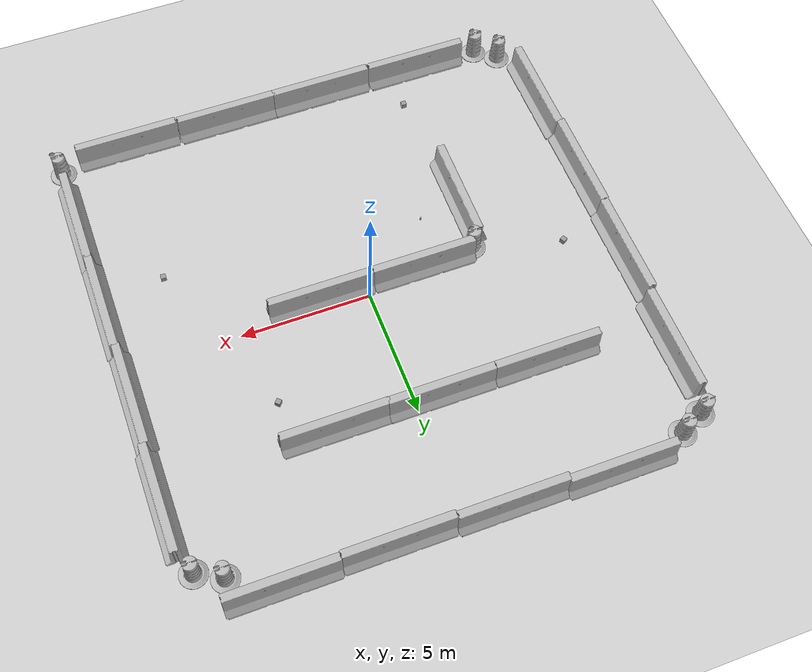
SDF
<sdf version="1.7">
 <world name="default">
  <light name="sun" type="directional">
   <pose>0 0 10 0 -0 0</pose>
   <diffuse>0.8 0.8 0.8 1</diffuse>
   <specular>0.2 0.2 0.2 1</specular>
   <attenuation>
    <range>1000</range>
    <constant>0.9</constant>
    <linear>0.01</linear>
    <quadratic>0.001</quadratic>
   </attenuation>
   <direction>-0.5 0.1 -0.9</direction>
   <spot><inner_angle>0</inner_angle><outer_angle>0</outer_angle><falloff>0</falloff></spot>
  </light>
  <model name="ground_plane">
   <static>1</static>
   <link name="link">
    <collision name="collision">
     <geometry><plane><normal>0 0 1</normal><size>100 100</size></plane></geometry>
     <surface><friction><ode><mu>100</mu><mu2>50</mu2></ode></friction></surface>
    </collision>
    <visual name="visual">
     <cast_shadows>0</cast_shadows>
     <geometry><plane><normal>0 0 1</normal><size>100 100</size></plane></geometry>
     <material>
      <script><uri>file://media/materials/scripts/gazebo.material</uri><name>Gazebo/Grey</name></script>
     </material>
    </visual>
   </link>
  </model>
  <gravity>0 0 -9.8</gravity>
  <magnetic_field>6e-06 2.3e-05 -4.2e-05</magnetic_field>
  <atmosphere type="adiabatic"/>
  <physics name="default_physics" default="0" type="ode">
   <max_step_size>0.001</max_step_size>
   <real_time_factor>1</real_time_factor>
   <real_time_update_rate>1000</real_time_update_rate>
  </physics>
  <scene><ambient>0.4 0.4 0.4 1</ambient><background>0.7 0.7 0.7 1</background><shadows>1</shadows></scene>
  <spherical_coordinates>
   <surface_model>EARTH_WGS84</surface_model>
   <latitude_deg>0</latitude_deg>
   <longitude_deg>0</longitude_deg>
   <elevation>0</elevation>
   <heading_deg>0</heading_deg>
  </spherical_coordinates>
  <model name="jersey_barrier">
   <static>1</static>
   <link name="link">
    <visual name="visual">
     <geometry><mesh><uri>model://jersey_barrier/meshes/jersey_barrier.dae</uri></mesh></geometry>
    </visual>
    <collision name="upright">
     <pose>0 0 0.5715 0 -0 0</pose>
     <geometry><box><size>4.06542 0.3063 1.143</size></box></geometry>
    </collision>
    <collision name="base">
     <pose>0 0 0.032258 0 -0 0</pose>
     <geometry><box><size>4.06542 0.8107 0.064516</size></box></geometry>
    </collision>
    <collision name="base2">
     <pose>0 0 0.1 0 -0 0</pose>
     <geometry><box><size>4.06542 0.65 0.1</size></box></geometry>
    </collision>
    <collision name="base3">
     <pose>0 0 0.2 0 -0 0</pose>
     <geometry><box><size>4.06542 0.5 0.1</size></box></geometry>
    </collision>
    <collision name="left-angle">
     <pose>0 -0.224 0.2401 0.9 -0 0</pose>
     <geometry><box><size>4.06542 0.5 0.064516</size></box></geometry>
    </collision>
    <collision name="right-angle">
     <pose>0 0.224 0.2401 -0.9 0 0</pose>
     <geometry><box><size>4.06542 0.5 0.064516</size></box></geometry>
    </collision>
   </link>
   <pose>-5.65677 9.4608 0 0 -0 0</pose>
  </model>
  <model name="jersey_barrier_clone">
   <static>1</static>
   <link name="link">
    <visual name="visual">
     <geometry><mesh><uri>model://jersey_barrier/meshes/jersey_barrier.dae</uri></mesh></geometry>
    </visual>
    <collision name="upright">
     <pose>0 0 0.5715 0 -0 0</pose>
     <geometry><box><size>4.06542 0.3063 1.143</size></box></geometry>
    </collision>
    <collision name="base">
     <pose>0 0 0.032258 0 -0 0</pose>
     <geometry><box><size>4.06542 0.8107 0.064516</size></box></geometry>
    </collision>
    <collision name="base2">
     <pose>0 0 0.1 0 -0 0</pose>
     <geometry><box><size>4.06542 0.65 0.1</size></box></geometry>
    </collision>
    <collision name="base3">
     <pose>0 0 0.2 0 -0 0</pose>
     <geometry><box><size>4.06542 0.5 0.1</size></box></geometry>
    </collision>
    <collision name="left-angle">
     <pose>0 -0.224 0.2401 0.9 -0 0</pose>
     <geometry><box><size>4.06542 0.5 0.064516</size></box></geometry>
    </collision>
    <collision name="right-angle">
     <pose>0 0.224 0.2401 -0.9 0 0</pose>
     <geometry><box><size>4.06542 0.5 0.064516</size></box></geometry>
    </collision>
   </link>
   <pose>-1.65987 9.36075 0 0 -0 0</pose>
  </model>
  <model name="jersey_barrier_clone_0">
   <static>1</static>
   <link name="link">
    <visual name="visual">
     <geometry><mesh><uri>model://jersey_barrier/meshes/jersey_barrier.dae</uri></mesh></geometry>
    </visual>
    <collision name="upright">
     <pose>0 0 0.5715 0 -0 0</pose>
     <geometry><box><size>4.06542 0.3063 1.143</size></box></geometry>
    </collision>
    <collision name="base">
     <pose>0 0 0.032258 0 -0 0</pose>
     <geometry><box><size>4.06542 0.8107 0.064516</size></box></geometry>
    </collision>
    <collision name="base2">
     <pose>0 0 0.1 0 -0 0</pose>
     <geometry><box><size>4.06542 0.65 0.1</size></box></geometry>
    </collision>
    <collision name="base3">
     <pose>0 0 0.2 0 -0 0</pose>
     <geometry><box><size>4.06542 0.5 0.1</size></box></geometry>
    </collision>
    <collision name="left-angle">
     <pose>0 -0.224 0.2401 0.9 -0 0</pose>
     <geometry><box><size>4.06542 0.5 0.064516</size></box></geometry>
    </collision>
    <collision name="right-angle">
     <pose>0 0.224 0.2401 -0.9 0 0</pose>
     <geometry><box><size>4.06542 0.5 0.064516</size></box></geometry>
    </collision>
   </link>
   <pose>2.39773 9.29085 0 0 -0 0</pose>
  </model>
  <model name="jersey_barrier_clone_1">
   <static>1</static>
   <link name="link">
    <visual name="visual">
     <geometry><mesh><uri>model://jersey_barrier/meshes/jersey_barrier.dae</uri></mesh></geometry>
    </visual>
    <collision name="upright">
     <pose>0 0 0.5715 0 -0 0</pose>
     <geometry><box><size>4.06542 0.3063 1.143</size></box></geometry>
    </collision>
    <collision name="base">
     <pose>0 0 0.032258 0 -0 0</pose>
     <geometry><box><size>4.06542 0.8107 0.064516</size></box></geometry>
    </collision>
    <collision name="base2">
     <pose>0 0 0.1 0 -0 0</pose>
     <geometry><box><size>4.06542 0.65 0.1</size></box></geometry>
    </collision>
    <collision name="base3">
     <pose>0 0 0.2 0 -0 0</pose>
     <geometry><box><size>4.06542 0.5 0.1</size></box></geometry>
    </collision>
    <collision name="left-angle">
     <pose>0 -0.224 0.2401 0.9 -0 0</pose>
     <geometry><box><size>4.06542 0.5 0.064516</size></box></geometry>
    </collision>
    <collision name="right-angle">
     <pose>0 0.224 0.2401 -0.9 0 0</pose>
     <geometry><box><size>4.06542 0.5 0.064516</size></box></geometry>
    </collision>
   </link>
   <pose>6.45464 9.33993 0 0 -0 0</pose>
  </model>
  <model name="jersey_barrier_clone_3">
   <static>1</static>
   <link name="link">
    <visual name="visual">
     <geometry><mesh><uri>model://jersey_barrier/meshes/jersey_barrier.dae</uri></mesh></geometry>
    </visual>
    <collision name="upright">
     <pose>0 0 0.5715 0 -0 0</pose>
     <geometry><box><size>4.06542 0.3063 1.143</size></box></geometry>
    </collision>
    <collision name="base">
     <pose>0 0 0.032258 0 -0 0</pose>
     <geometry><box><size>4.06542 0.8107 0.064516</size></box></geometry>
    </collision>
    <collision name="base2">
     <pose>0 0 0.1 0 -0 0</pose>
     <geometry><box><size>4.06542 0.65 0.1</size></box></geometry>
    </collision>
    <collision name="base3">
     <pose>0 0 0.2 0 -0 0</pose>
     <geometry><box><size>4.06542 0.5 0.1</size></box></geometry>
    </collision>
    <collision name="left-angle">
     <pose>0 -0.224 0.2401 0.9 -0 0</pose>
     <geometry><box><size>4.06542 0.5 0.064516</size></box></geometry>
    </collision>
    <collision name="right-angle">
     <pose>0 0.224 0.2401 -0.9 0 0</pose>
     <geometry><box><size>4.06542 0.5 0.064516</size></box></geometry>
    </collision>
   </link>
   <pose>9.44656 5.35522 0 0 0 -1.56865</pose>
  </model>
  <model name="jersey_barrier_clone_3_clone">
   <static>1</static>
   <link name="link">
    <visual name="visual">
     <geometry><mesh><uri>model://jersey_barrier/meshes/jersey_barrier.dae</uri></mesh></geometry>
    </visual>
    <collision name="upright">
     <pose>0 0 0.5715 0 -0 0</pose>
     <geometry><box><size>4.06542 0.3063 1.143</size></box></geometry>
    </collision>
    <collision name="base">
     <pose>0 0 0.032258 0 -0 0</pose>
     <geometry><box><size>4.06542 0.8107 0.064516</size></box></geometry>
    </collision>
    <collision name="base2">
     <pose>0 0 0.1 0 -0 0</pose>
     <geometry><box><size>4.06542 0.65 0.1</size></box></geometry>
    </collision>
    <collision name="base3">
     <pose>0 0 0.2 0 -0 0</pose>
     <geometry><box><size>4.06542 0.5 0.1</size></box></geometry>
    </collision>
    <collision name="left-angle">
     <pose>0 -0.224 0.2401 0.9 -0 0</pose>
     <geometry><box><size>4.06542 0.5 0.064516</size></box></geometry>
    </collision>
    <collision name="right-angle">
     <pose>0 0.224 0.2401 -0.9 0 0</pose>
     <geometry><box><size>4.06542 0.5 0.064516</size></box></geometry>
    </collision>
   </link>
   <pose>9.3727 1.33119 0 0 0 -1.56865</pose>
  </model>
  <model name="jersey_barrier_clone_3_clone_0">
   <static>1</static>
   <link name="link">
    <visual name="visual">
     <geometry><mesh><uri>model://jersey_barrier/meshes/jersey_barrier.dae</uri></mesh></geometry>
    </visual>
    <collision name="upright">
     <pose>0 0 0.5715 0 -0 0</pose>
     <geometry><box><size>4.06542 0.3063 1.143</size></box></geometry>
    </collision>
    <collision name="base">
     <pose>0 0 0.032258 0 -0 0</pose>
     <geometry><box><size>4.06542 0.8107 0.064516</size></box></geometry>
    </collision>
    <collision name="base2">
     <pose>0 0 0.1 0 -0 0</pose>
     <geometry><box><size>4.06542 0.65 0.1</size></box></geometry>
    </collision>
    <collision name="base3">
     <pose>0 0 0.2 0 -0 0</pose>
     <geometry><box><size>4.06542 0.5 0.1</size></box></geometry>
    </collision>
    <collision name="left-angle">
     <pose>0 -0.224 0.2401 0.9 -0 0</pose>
     <geometry><box><size>4.06542 0.5 0.064516</size></box></geometry>
    </collision>
    <collision name="right-angle">
     <pose>0 0.224 0.2401 -0.9 0 0</pose>
     <geometry><box><size>4.06542 0.5 0.064516</size></box></geometry>
    </collision>
   </link>
   <pose>9.4315 -2.6268 0 0 0 -1.56865</pose>
  </model>
  <model name="jersey_barrier_clone_3_clone_1">
   <static>1</static>
   <link name="link">
    <visual name="visual">
     <geometry><mesh><uri>model://jersey_barrier/meshes/jersey_barrier.dae</uri></mesh></geometry>
    </visual>
    <collision name="upright">
     <pose>0 0 0.5715 0 -0 0</pose>
     <geometry><box><size>4.06542 0.3063 1.143</size></box></geometry>
    </collision>
    <collision name="base">
     <pose>0 0 0.032258 0 -0 0</pose>
     <geometry><box><size>4.06542 0.8107 0.064516</size></box></geometry>
    </collision>
    <collision name="base2">
     <pose>0 0 0.1 0 -0 0</pose>
     <geometry><box><size>4.06542 0.65 0.1</size></box></geometry>
    </collision>
    <collision name="base3">
     <pose>0 0 0.2 0 -0 0</pose>
     <geometry><box><size>4.06542 0.5 0.1</size></box></geometry>
    </collision>
    <collision name="left-angle">
     <pose>0 -0.224 0.2401 0.9 -0 0</pose>
     <geometry><box><size>4.06542 0.5 0.064516</size></box></geometry>
    </collision>
    <collision name="right-angle">
     <pose>0 0.224 0.2401 -0.9 0 0</pose>
     <geometry><box><size>4.06542 0.5 0.064516</size></box></geometry>
    </collision>
   </link>
   <pose>9.44969 -6.53485 0 0 0 -1.56865</pose>
  </model>
  <model name="jersey_barrier_clone_2_clone">
   <static>1</static>
   <link name="link">
    <visual name="visual">
     <geometry><mesh><uri>model://jersey_barrier/meshes/jersey_barrier.dae</uri></mesh></geometry>
    </visual>
    <collision name="upright">
     <pose>0 0 0.5715 0 -0 0</pose>
     <geometry><box><size>4.06542 0.3063 1.143</size></box></geometry>
    </collision>
    <collision name="base">
     <pose>0 0 0.032258 0 -0 0</pose>
     <geometry><box><size>4.06542 0.8107 0.064516</size></box></geometry>
    </collision>
    <collision name="base2">
     <pose>0 0 0.1 0 -0 0</pose>
     <geometry><box><size>4.06542 0.65 0.1</size></box></geometry>
    </collision>
    <collision name="base3">
     <pose>0 0 0.2 0 -0 0</pose>
     <geometry><box><size>4.06542 0.5 0.1</size></box></geometry>
    </collision>
    <collision name="left-angle">
     <pose>0 -0.224 0.2401 0.9 -0 0</pose>
     <geometry><box><size>4.06542 0.5 0.064516</size></box></geometry>
    </collision>
    <collision name="right-angle">
     <pose>0 0.224 0.2401 -0.9 0 0</pose>
     <geometry><box><size>4.06542 0.5 0.064516</size></box></geometry>
    </collision>
   </link>
   <pose>6.70657 -9.54347 0 0 -0 0</pose>
  </model>
  <model name="jersey_barrier_clone_2_clone_0">
   <static>1</static>
   <link name="link">
    <visual name="visual">
     <geometry><mesh><uri>model://jersey_barrier/meshes/jersey_barrier.dae</uri></mesh></geometry>
    </visual>
    <collision name="upright">
     <pose>0 0 0.5715 0 -0 0</pose>
     <geometry><box><size>4.06542 0.3063 1.143</size></box></geometry>
    </collision>
    <collision name="base">
     <pose>0 0 0.032258 0 -0 0</pose>
     <geometry><box><size>4.06542 0.8107 0.064516</size></box></geometry>
    </collision>
    <collision name="base2">
     <pose>0 0 0.1 0 -0 0</pose>
     <geometry><box><size>4.06542 0.65 0.1</size></box></geometry>
    </collision>
    <collision name="base3">
     <pose>0 0 0.2 0 -0 0</pose>
     <geometry><box><size>4.06542 0.5 0.1</size></box></geometry>
    </collision>
    <collision name="left-angle">
     <pose>0 -0.224 0.2401 0.9 -0 0</pose>
     <geometry><box><size>4.06542 0.5 0.064516</size></box></geometry>
    </collision>
    <collision name="right-angle">
     <pose>0 0.224 0.2401 -0.9 0 0</pose>
     <geometry><box><size>4.06542 0.5 0.064516</size></box></geometry>
    </collision>
   </link>
   <pose>2.59616 -9.50928 0 0 -0 0</pose>
  </model>
  <model name="jersey_barrier_clone_2_clone_1">
   <static>1</static>
   <link name="link">
    <visual name="visual">
     <geometry><mesh><uri>model://jersey_barrier/meshes/jersey_barrier.dae</uri></mesh></geometry>
    </visual>
    <collision name="upright">
     <pose>0 0 0.5715 0 -0 0</pose>
     <geometry><box><size>4.06542 0.3063 1.143</size></box></geometry>
    </collision>
    <collision name="base">
     <pose>0 0 0.032258 0 -0 0</pose>
     <geometry><box><size>4.06542 0.8107 0.064516</size></box></geometry>
    </collision>
    <collision name="base2">
     <pose>0 0 0.1 0 -0 0</pose>
     <geometry><box><size>4.06542 0.65 0.1</size></box></geometry>
    </collision>
    <collision name="base3">
     <pose>0 0 0.2 0 -0 0</pose>
     <geometry><box><size>4.06542 0.5 0.1</size></box></geometry>
    </collision>
    <collision name="left-angle">
     <pose>0 -0.224 0.2401 0.9 -0 0</pose>
     <geometry><box><size>4.06542 0.5 0.064516</size></box></geometry>
    </collision>
    <collision name="right-angle">
     <pose>0 0.224 0.2401 -0.9 0 0</pose>
     <geometry><box><size>4.06542 0.5 0.064516</size></box></geometry>
    </collision>
   </link>
   <pose>-1.33414 -9.50852 0 0 -0 0</pose>
  </model>
  <model name="jersey_barrier_clone_2_clone_2">
   <static>1</static>
   <link name="link">
    <visual name="visual">
     <geometry><mesh><uri>model://jersey_barrier/meshes/jersey_barrier.dae</uri></mesh></geometry>
    </visual>
    <collision name="upright">
     <pose>0 0 0.5715 0 -0 0</pose>
     <geometry><box><size>4.06542 0.3063 1.143</size></box></geometry>
    </collision>
    <collision name="base">
     <pose>0 0 0.032258 0 -0 0</pose>
     <geometry><box><size>4.06542 0.8107 0.064516</size></box></geometry>
    </collision>
    <collision name="base2">
     <pose>0 0 0.1 0 -0 0</pose>
     <geometry><box><size>4.06542 0.65 0.1</size></box></geometry>
    </collision>
    <collision name="base3">
     <pose>0 0 0.2 0 -0 0</pose>
     <geometry><box><size>4.06542 0.5 0.1</size></box></geometry>
    </collision>
    <collision name="left-angle">
     <pose>0 -0.224 0.2401 0.9 -0 0</pose>
     <geometry><box><size>4.06542 0.5 0.064516</size></box></geometry>
    </collision>
    <collision name="right-angle">
     <pose>0 0.224 0.2401 -0.9 0 0</pose>
     <geometry><box><size>4.06542 0.5 0.064516</size></box></geometry>
    </collision>
   </link>
   <pose>-5.44605 -9.49634 0 0 -0 0</pose>
  </model>
  <model name="jersey_barrier_clone_3_clone_1_clone">
   <static>1</static>
   <link name="link">
    <visual name="visual">
     <geometry><mesh><uri>model://jersey_barrier/meshes/jersey_barrier.dae</uri></mesh></geometry>
    </visual>
    <collision name="upright">
     <pose>0 0 0.5715 0 -0 0</pose>
     <geometry><box><size>4.06542 0.3063 1.143</size></box></geometry>
    </collision>
    <collision name="base">
     <pose>0 0 0.032258 0 -0 0</pose>
     <geometry><box><size>4.06542 0.8107 0.064516</size></box></geometry>
    </collision>
    <collision name="base2">
     <pose>0 0 0.1 0 -0 0</pose>
     <geometry><box><size>4.06542 0.65 0.1</size></box></geometry>
    </collision>
    <collision name="base3">
     <pose>0 0 0.2 0 -0 0</pose>
     <geometry><box><size>4.06542 0.5 0.1</size></box></geometry>
    </collision>
    <collision name="left-angle">
     <pose>0 -0.224 0.2401 0.9 -0 0</pose>
     <geometry><box><size>4.06542 0.5 0.064516</size></box></geometry>
    </collision>
    <collision name="right-angle">
     <pose>0 0.224 0.2401 -0.9 0 0</pose>
     <geometry><box><size>4.06542 0.5 0.064516</size></box></geometry>
    </collision>
   </link>
   <pose>-9.54289 -6.33149 0 0 0 -1.56865</pose>
  </model>
  <model name="jersey_barrier_clone_3_clone_1_clone_0">
   <static>1</static>
   <link name="link">
    <visual name="visual">
     <geometry><mesh><uri>model://jersey_barrier/meshes/jersey_barrier.dae</uri></mesh></geometry>
    </visual>
    <collision name="upright">
     <pose>0 0 0.5715 0 -0 0</pose>
     <geometry><box><size>4.06542 0.3063 1.143</size></box></geometry>
    </collision>
    <collision name="base">
     <pose>0 0 0.032258 0 -0 0</pose>
     <geometry><box><size>4.06542 0.8107 0.064516</size></box></geometry>
    </collision>
    <collision name="base2">
     <pose>0 0 0.1 0 -0 0</pose>
     <geometry><box><size>4.06542 0.65 0.1</size></box></geometry>
    </collision>
    <collision name="base3">
     <pose>0 0 0.2 0 -0 0</pose>
     <geometry><box><size>4.06542 0.5 0.1</size></box></geometry>
    </collision>
    <collision name="left-angle">
     <pose>0 -0.224 0.2401 0.9 -0 0</pose>
     <geometry><box><size>4.06542 0.5 0.064516</size></box></geometry>
    </collision>
    <collision name="right-angle">
     <pose>0 0.224 0.2401 -0.9 0 0</pose>
     <geometry><box><size>4.06542 0.5 0.064516</size></box></geometry>
    </collision>
   </link>
   <pose>-9.6221 -2.35336 0 0 0 -1.56865</pose>
  </model>
  <model name="jersey_barrier_clone_3_clone_1_clone_1">
   <static>1</static>
   <link name="link">
    <visual name="visual">
     <geometry><mesh><uri>model://jersey_barrier/meshes/jersey_barrier.dae</uri></mesh></geometry>
    </visual>
    <collision name="upright">
     <pose>0 0 0.5715 0 -0 0</pose>
     <geometry><box><size>4.06542 0.3063 1.143</size></box></geometry>
    </collision>
    <collision name="base">
     <pose>0 0 0.032258 0 -0 0</pose>
     <geometry><box><size>4.06542 0.8107 0.064516</size></box></geometry>
    </collision>
    <collision name="base2">
     <pose>0 0 0.1 0 -0 0</pose>
     <geometry><box><size>4.06542 0.65 0.1</size></box></geometry>
    </collision>
    <collision name="base3">
     <pose>0 0 0.2 0 -0 0</pose>
     <geometry><box><size>4.06542 0.5 0.1</size></box></geometry>
    </collision>
    <collision name="left-angle">
     <pose>0 -0.224 0.2401 0.9 -0 0</pose>
     <geometry><box><size>4.06542 0.5 0.064516</size></box></geometry>
    </collision>
    <collision name="right-angle">
     <pose>0 0.224 0.2401 -0.9 0 0</pose>
     <geometry><box><size>4.06542 0.5 0.064516</size></box></geometry>
    </collision>
   </link>
   <pose>-9.58952 1.69745 0 0 0 -1.56865</pose>
  </model>
  <model name="jersey_barrier_clone_3_clone_1_clone_2">
   <static>1</static>
   <link name="link">
    <visual name="visual">
     <geometry><mesh><uri>model://jersey_barrier/meshes/jersey_barrier.dae</uri></mesh></geometry>
    </visual>
    <collision name="upright">
     <pose>0 0 0.5715 0 -0 0</pose>
     <geometry><box><size>4.06542 0.3063 1.143</size></box></geometry>
    </collision>
    <collision name="base">
     <pose>0 0 0.032258 0 -0 0</pose>
     <geometry><box><size>4.06542 0.8107 0.064516</size></box></geometry>
    </collision>
    <collision name="base2">
     <pose>0 0 0.1 0 -0 0</pose>
     <geometry><box><size>4.06542 0.65 0.1</size></box></geometry>
    </collision>
    <collision name="base3">
     <pose>0 0 0.2 0 -0 0</pose>
     <geometry><box><size>4.06542 0.5 0.1</size></box></geometry>
    </collision>
    <collision name="left-angle">
     <pose>0 -0.224 0.2401 0.9 -0 0</pose>
     <geometry><box><size>4.06542 0.5 0.064516</size></box></geometry>
    </collision>
    <collision name="right-angle">
     <pose>0 0.224 0.2401 -0.9 0 0</pose>
     <geometry><box><size>4.06542 0.5 0.064516</size></box></geometry>
    </collision>
   </link>
   <pose>-9.44715 5.83721 0 0 0 -1.56865</pose>
  </model>
  <model name="Construction Barrel">
   <link name="link">
    <inertial>
     <pose>0 0 0.4 0 -0 0</pose>
     <mass>500</mass>
     <inertia><ixx>51.2096</ixx><iyy>51.2096</iyy><izz>25</izz><ixy>0</ixy><ixz>0</ixz><iyz>0</iyz></inertia>
    </inertial>
    <collision name="collision">
     <geometry><mesh><uri>model://construction_barrel/meshes/construction_barrel.dae</uri></mesh></geometry>
    </collision>
    <visual name="visual">
     <geometry><mesh><uri>model://construction_barrel/meshes/construction_barrel.dae</uri></mesh></geometry>
    </visual>
   </link>
   <pose>9.07443 7.91056 -2e-06 7e-06 -2e-06 -6e-05</pose>
  </model>
  <model name="Construction Barrel_0">
   <link name="link">
    <inertial>
     <pose>0 0 0.4 0 -0 0</pose>
     <mass>500</mass>
     <inertia><ixx>51.2096</ixx><iyy>51.2096</iyy><izz>25</izz><ixy>0</ixy><ixz>0</ixz><iyz>0</iyz></inertia>
    </inertial>
    <collision name="collision">
     <geometry><mesh><uri>model://construction_barrel/meshes/construction_barrel.dae</uri></mesh></geometry>
    </collision>
    <visual name="visual">
     <geometry><mesh><uri>model://construction_barrel/meshes/construction_barrel.dae</uri></mesh></geometry>
    </visual>
   </link>
   <pose>8.12827 8.41636 -2e-06 7e-06 -2e-06 -5.5e-05</pose>
  </model>
  <model name="Construction Barrel_1">
   <link name="link">
    <inertial>
     <pose>0 0 0.4 0 -0 0</pose>
     <mass>500</mass>
     <inertia><ixx>51.2096</ixx><iyy>51.2096</iyy><izz>25</izz><ixy>0</ixy><ixz>0</ixz><iyz>0</iyz></inertia>
    </inertial>
    <collision name="collision">
     <geometry><mesh><uri>model://construction_barrel/meshes/construction_barrel.dae</uri></mesh></geometry>
    </collision>
    <visual name="visual">
     <geometry><mesh><uri>model://construction_barrel/meshes/construction_barrel.dae</uri></mesh></geometry>
    </visual>
   </link>
   <pose>-9.27264 8.48391 -2e-06 7e-06 -2e-06 -5.4e-05</pose>
  </model>
  <model name="Construction Barrel_2">
   <link name="link">
    <inertial>
     <pose>0 0 0.4 0 -0 0</pose>
     <mass>500</mass>
     <inertia><ixx>51.2096</ixx><iyy>51.2096</iyy><izz>25</izz><ixy>0</ixy><ixz>0</ixz><iyz>0</iyz></inertia>
    </inertial>
    <collision name="collision">
     <geometry><mesh><uri>model://construction_barrel/meshes/construction_barrel.dae</uri></mesh></geometry>
    </collision>
    <visual name="visual">
     <geometry><mesh><uri>model://construction_barrel/meshes/construction_barrel.dae</uri></mesh></geometry>
    </visual>
   </link>
   <pose>-8.34363 8.93853 -1e-06 2e-06 -1e-06 -5e-05</pose>
  </model>
  <model name="Construction Barrel_3">
   <link name="link">
    <inertial>
     <pose>0 0 0.4 0 -0 0</pose>
     <mass>500</mass>
     <inertia><ixx>51.2096</ixx><iyy>51.2096</iyy><izz>25</izz><ixy>0</ixy><ixz>0</ixz><iyz>0</iyz></inertia>
    </inertial>
    <collision name="collision">
     <geometry><mesh><uri>model://construction_barrel/meshes/construction_barrel.dae</uri></mesh></geometry>
    </collision>
    <visual name="visual">
     <geometry><mesh><uri>model://construction_barrel/meshes/construction_barrel.dae</uri></mesh></geometry>
    </visual>
   </link>
   <pose>9.4536 -9.29434 -1e-06 2e-06 -1e-06 -3.8e-05</pose>
  </model>
  <model name="Construction Barrel_4">
   <link name="link">
    <inertial>
     <pose>0 0 0.4 0 -0 0</pose>
     <mass>500</mass>
     <inertia><ixx>51.2096</ixx><iyy>51.2096</iyy><izz>25</izz><ixy>0</ixy><ixz>0</ixz><iyz>0</iyz></inertia>
    </inertial>
    <collision name="collision">
     <geometry><mesh><uri>model://construction_barrel/meshes/construction_barrel.dae</uri></mesh></geometry>
    </collision>
    <visual name="visual">
     <geometry><mesh><uri>model://construction_barrel/meshes/construction_barrel.dae</uri></mesh></geometry>
    </visual>
   </link>
   <pose>-8.13318 -9.57174 -1e-06 2e-06 -2e-06 -0.000492</pose>
  </model>
  <model name="Construction Barrel_5">
   <link name="link">
    <inertial>
     <pose>0 0 0.4 0 -0 0</pose>
     <mass>500</mass>
     <inertia><ixx>51.2096</ixx><iyy>51.2096</iyy><izz>25</izz><ixy>0</ixy><ixz>0</ixz><iyz>0</iyz></inertia>
    </inertial>
    <collision name="collision">
     <geometry><mesh><uri>model://construction_barrel/meshes/construction_barrel.dae</uri></mesh></geometry>
    </collision>
    <visual name="visual">
     <geometry><mesh><uri>model://construction_barrel/meshes/construction_barrel.dae</uri></mesh></geometry>
    </visual>
   </link>
   <pose>-8.93853 -8.96008 -1e-06 3e-06 7e-06 -0.000401</pose>
  </model>
  <model name="jersey_barrier_0">
   <static>1</static>
   <link name="link">
    <visual name="visual">
     <geometry><mesh><uri>model://jersey_barrier/meshes/jersey_barrier.dae</uri></mesh></geometry>
    </visual>
    <collision name="upright">
     <pose>0 0 0.5715 0 -0 0</pose>
     <geometry><box><size>4.06542 0.3063 1.143</size></box></geometry>
    </collision>
    <collision name="base">
     <pose>0 0 0.032258 0 -0 0</pose>
     <geometry><box><size>4.06542 0.8107 0.064516</size></box></geometry>
    </collision>
    <collision name="base2">
     <pose>0 0 0.1 0 -0 0</pose>
     <geometry><box><size>4.06542 0.65 0.1</size></box></geometry>
    </collision>
    <collision name="base3">
     <pose>0 0 0.2 0 -0 0</pose>
     <geometry><box><size>4.06542 0.5 0.1</size></box></geometry>
    </collision>
    <collision name="left-angle">
     <pose>0 -0.224 0.2401 0.9 -0 0</pose>
     <geometry><box><size>4.06542 0.5 0.064516</size></box></geometry>
    </collision>
    <collision name="right-angle">
     <pose>0 0.224 0.2401 -0.9 0 0</pose>
     <geometry><box><size>4.06542 0.5 0.064516</size></box></geometry>
    </collision>
   </link>
   <pose>-4.97429 4.73074 0 0 -0 0</pose>
  </model>
  <model name="jersey_barrier_0_clone">
   <static>1</static>
   <link name="link">
    <visual name="visual">
     <geometry><mesh><uri>model://jersey_barrier/meshes/jersey_barrier.dae</uri></mesh></geometry>
    </visual>
    <collision name="upright">
     <pose>0 0 0.5715 0 -0 0</pose>
     <geometry><box><size>4.06542 0.3063 1.143</size></box></geometry>
    </collision>
    <collision name="base">
     <pose>0 0 0.032258 0 -0 0</pose>
     <geometry><box><size>4.06542 0.8107 0.064516</size></box></geometry>
    </collision>
    <collision name="base2">
     <pose>0 0 0.1 0 -0 0</pose>
     <geometry><box><size>4.06542 0.65 0.1</size></box></geometry>
    </collision>
    <collision name="base3">
     <pose>0 0 0.2 0 -0 0</pose>
     <geometry><box><size>4.06542 0.5 0.1</size></box></geometry>
    </collision>
    <collision name="left-angle">
     <pose>0 -0.224 0.2401 0.9 -0 0</pose>
     <geometry><box><size>4.06542 0.5 0.064516</size></box></geometry>
    </collision>
    <collision name="right-angle">
     <pose>0 0.224 0.2401 -0.9 0 0</pose>
     <geometry><box><size>4.06542 0.5 0.064516</size></box></geometry>
    </collision>
   </link>
   <pose>-0.93635 4.73131 0 0 -0 0</pose>
  </model>
  <model name="jersey_barrier_0_clone_0">
   <static>1</static>
   <link name="link">
    <visual name="visual">
     <geometry><mesh><uri>model://jersey_barrier/meshes/jersey_barrier.dae</uri></mesh></geometry>
    </visual>
    <collision name="upright">
     <pose>0 0 0.5715 0 -0 0</pose>
     <geometry><box><size>4.06542 0.3063 1.143</size></box></geometry>
    </collision>
    <collision name="base">
     <pose>0 0 0.032258 0 -0 0</pose>
     <geometry><box><size>4.06542 0.8107 0.064516</size></box></geometry>
    </collision>
    <collision name="base2">
     <pose>0 0 0.1 0 -0 0</pose>
     <geometry><box><size>4.06542 0.65 0.1</size></box></geometry>
    </collision>
    <collision name="base3">
     <pose>0 0 0.2 0 -0 0</pose>
     <geometry><box><size>4.06542 0.5 0.1</size></box></geometry>
    </collision>
    <collision name="left-angle">
     <pose>0 -0.224 0.2401 0.9 -0 0</pose>
     <geometry><box><size>4.06542 0.5 0.064516</size></box></geometry>
    </collision>
    <collision name="right-angle">
     <pose>0 0.224 0.2401 -0.9 0 0</pose>
     <geometry><box><size>4.06542 0.5 0.064516</size></box></geometry>
    </collision>
   </link>
   <pose>2.99134 4.7208 0 0 -0 0</pose>
  </model>
  <model name="jersey_barrier_0_clone_1">
   <static>1</static>
   <link name="link">
    <visual name="visual">
     <geometry><mesh><uri>model://jersey_barrier/meshes/jersey_barrier.dae</uri></mesh></geometry>
    </visual>
    <collision name="upright">
     <pose>0 0 0.5715 0 -0 0</pose>
     <geometry><box><size>4.06542 0.3063 1.143</size></box></geometry>
    </collision>
    <collision name="base">
     <pose>0 0 0.032258 0 -0 0</pose>
     <geometry><box><size>4.06542 0.8107 0.064516</size></box></geometry>
    </collision>
    <collision name="base2">
     <pose>0 0 0.1 0 -0 0</pose>
     <geometry><box><size>4.06542 0.65 0.1</size></box></geometry>
    </collision>
    <collision name="base3">
     <pose>0 0 0.2 0 -0 0</pose>
     <geometry><box><size>4.06542 0.5 0.1</size></box></geometry>
    </collision>
    <collision name="left-angle">
     <pose>0 -0.224 0.2401 0.9 -0 0</pose>
     <geometry><box><size>4.06542 0.5 0.064516</size></box></geometry>
    </collision>
    <collision name="right-angle">
     <pose>0 0.224 0.2401 -0.9 0 0</pose>
     <geometry><box><size>4.06542 0.5 0.064516</size></box></geometry>
    </collision>
   </link>
   <pose>-2.28125 -0.396276 0 0 -0 0</pose>
  </model>
  <model name="jersey_barrier_0_clone_1_clone">
   <static>1</static>
   <link name="link">
    <visual name="visual">
     <geometry><mesh><uri>model://jersey_barrier/meshes/jersey_barrier.dae</uri></mesh></geometry>
    </visual>
    <collision name="upright">
     <pose>0 0 0.5715 0 -0 0</pose>
     <geometry><box><size>4.06542 0.3063 1.143</size></box></geometry>
    </collision>
    <collision name="base">
     <pose>0 0 0.032258 0 -0 0</pose>
     <geometry><box><size>4.06542 0.8107 0.064516</size></box></geometry>
    </collision>
    <collision name="base2">
     <pose>0 0 0.1 0 -0 0</pose>
     <geometry><box><size>4.06542 0.65 0.1</size></box></geometry>
    </collision>
    <collision name="base3">
     <pose>0 0 0.2 0 -0 0</pose>
     <geometry><box><size>4.06542 0.5 0.1</size></box></geometry>
    </collision>
    <collision name="left-angle">
     <pose>0 -0.224 0.2401 0.9 -0 0</pose>
     <geometry><box><size>4.06542 0.5 0.064516</size></box></geometry>
    </collision>
    <collision name="right-angle">
     <pose>0 0.224 0.2401 -0.9 0 0</pose>
     <geometry><box><size>4.06542 0.5 0.064516</size></box></geometry>
    </collision>
   </link>
   <pose>1.76519 -0.393386 0 0 -0 0</pose>
  </model>
  <model name="jersey_barrier_0_clone_1_clone_clone">
   <static>1</static>
   <link name="link">
    <visual name="visual">
     <geometry><mesh><uri>model://jersey_barrier/meshes/jersey_barrier.dae</uri></mesh></geometry>
    </visual>
    <collision name="upright">
     <pose>0 0 0.5715 0 -0 0</pose>
     <geometry><box><size>4.06542 0.3063 1.143</size></box></geometry>
    </collision>
    <collision name="base">
     <pose>0 0 0.032258 0 -0 0</pose>
     <geometry><box><size>4.06542 0.8107 0.064516</size></box></geometry>
    </collision>
    <collision name="base2">
     <pose>0 0 0.1 0 -0 0</pose>
     <geometry><box><size>4.06542 0.65 0.1</size></box></geometry>
    </collision>
    <collision name="base3">
     <pose>0 0 0.2 0 -0 0</pose>
     <geometry><box><size>4.06542 0.5 0.1</size></box></geometry>
    </collision>
    <collision name="left-angle">
     <pose>0 -0.224 0.2401 0.9 -0 0</pose>
     <geometry><box><size>4.06542 0.5 0.064516</size></box></geometry>
    </collision>
    <collision name="right-angle">
     <pose>0 0.224 0.2401 -0.9 0 0</pose>
     <geometry><box><size>4.06542 0.5 0.064516</size></box></geometry>
    </collision>
   </link>
   <pose>-4.66188 -2.77696 0 0 0 -1.58136</pose>
  </model>
  <model name="coke_can">
   <link name="link">
    <inertial>
     <pose>-0.01 -0.012 0.15 0 -0 0</pose>
     <mass>0.39</mass>
     <inertia><ixx>0.00058</ixx><ixy>0</ixy><ixz>0</ixz><iyy>0.00058</iyy><iyz>0</iyz><izz>0.00019</izz></inertia>
    </inertial>
    <collision name="collision">
     <pose>0 0 -0.46 0 -0 0</pose>
     <geometry><mesh><uri>model://coke_can/meshes/coke_can.dae</uri></mesh></geometry>
     <surface>
      <friction><ode><mu>1</mu><mu2>1</mu2></ode></friction>
      <contact><ode><kp>1e+07</kp><kd>1</kd><min_depth>0.001</min_depth><max_vel>0.1</max_vel></ode></contact>
     </surface>
    </collision>
    <visual name="visual">
     <pose>0 0 -0.46 0 -0 0</pose>
     <geometry><mesh><uri>model://coke_can/meshes/coke_can.dae</uri></mesh></geometry>
    </visual>
   </link>
   <pose>-3.00798 -2.51602 0.276382 -0.014374 -0.002664 -0.077927</pose>
  </model>
  <model name="Construction Barrel_6">
   <link name="link">
    <inertial>
     <pose>0 0 0.4 0 -0 0</pose>
     <mass>500</mass>
     <inertia><ixx>51.2096</ixx><iyy>51.2096</iyy><izz>25</izz><ixy>0</ixy><ixz>0</ixz><iyz>0</iyz></inertia>
    </inertial>
    <collision name="collision">
     <geometry><mesh><uri>model://construction_barrel/meshes/construction_barrel.dae</uri></mesh></geometry>
    </collision>
    <visual name="visual">
     <geometry><mesh><uri>model://construction_barrel/meshes/construction_barrel.dae</uri></mesh></geometry>
    </visual>
   </link>
   <pose>-4.39429 -0.664212 -0.000633 -0.000464 -0.013756 -0.003849</pose>
  </model>
  <model name="marker11_box">
   <link name="marker">
    <inertial>
     <mass>0.1</mass>
     <inertia><ixx>0</ixx><ixy>0</ixy><ixz>0</ixz><iyy>0</iyy><iyz>0</iyz><izz>0</izz></inertia>
    </inertial>
    <self_collide>1</self_collide>
    <pose>-0.76428 -0.101106 0.120004 -0.015494 1.56996 -0.015507</pose>
    <visual name="visual">
     <geometry><box><size>0.2 0.2 0.001</size></box></geometry>
     <material>
      <script>
       <uri>model://marker11/material/scripts</uri>
       <uri>model://marker11/material/textures</uri>
       <name>Aruco/marker11</name>
      </script>
      <shader type="pixel"><normal_map>__default__</normal_map></shader>
      <emissive>0 0 0 1</emissive>
      <ambient>1 1 1 1</ambient>
      <diffuse>1 1 1 1</diffuse>
      <specular>0 0 0 1</specular>
     </material>
    </visual>
    <collision name="collision">
     <geometry><box><size>0.2 0.2 0.02</size></box></geometry>
     <surface>
      <friction>
       <ode><mu>1</mu><mu2>1</mu2><fdir1>0 0 0</fdir1><slip1>0</slip1><slip2>0</slip2></ode>
       <torsional>
        <coefficient>1</coefficient>
        <patch_radius>0</patch_radius>
        <surface_radius>0</surface_radius>
        <use_patch_radius>1</use_patch_radius>
        <ode><slip>0</slip></ode>
       </torsional>
      </friction>
      <bounce><restitution_coefficient>0</restitution_coefficient><threshold>1e+06</threshold></bounce>
      <contact>
       <collide_without_contact>0</collide_without_contact>
       <collide_without_contact_bitmask>1</collide_without_contact_bitmask>
       <collide_bitmask>1</collide_bitmask>
       <ode>
        <soft_cfm>0</soft_cfm>
        <soft_erp>0.2</soft_erp>
        <kp>1e+13</kp>
        <kd>1</kd>
        <max_vel>0.01</max_vel>
        <min_depth>0</min_depth>
       </ode>
       <bullet>
        <split_impulse>1</split_impulse>
        <split_impulse_penetration_threshold>-0.01</split_impulse_penetration_threshold>
        <soft_cfm>0</soft_cfm>
        <soft_erp>0.2</soft_erp>
        <kp>1e+13</kp>
        <kd>1</kd>
       </bullet>
      </contact>
     </surface>
    </collision>
   </link>
   <link name="link_1">
    <inertial>
     <mass>1</mass>
     <inertia>
      <ixx>0.166667</ixx>
      <ixy>0</ixy>
      <ixz>0</ixz>
      <iyy>0.166667</iyy>
      <iyz>0</iyz>
      <izz>0.166667</izz>
     </inertia>
    </inertial>
    <pose>-0.86428 -0.101106 0.12 -1.3e-05 -4.2e-05 0</pose>
    <visual name="visual">
     <geometry><box><size>0.2 0.2 0.2</size></box></geometry>
     <material>
      <lighting>1</lighting>
      <script><uri>file://media/materials/scripts/gazebo.material</uri><name>Gazebo/Grey</name></script>
      <shader type="pixel"><normal_map>__default__</normal_map></shader>
      <emissive>0 0 0 1</emissive>
      <ambient>0.3 0.3 0.3 1</ambient>
      <diffuse>0.7 0.7 0.7 1</diffuse>
      <specular>0.01 0.01 0.01 1</specular>
     </material>
    </visual>
    <collision name="collision">
     <geometry><box><size>0.2 0.2 0.2</size></box></geometry>
     <surface>
      <friction>
       <ode><mu>1</mu><mu2>1</mu2><fdir1>0 0 0</fdir1><slip1>0</slip1><slip2>0</slip2></ode>
       <torsional>
        <coefficient>1</coefficient>
        <patch_radius>0</patch_radius>
        <surface_radius>0</surface_radius>
        <use_patch_radius>1</use_patch_radius>
        <ode><slip>0</slip></ode>
       </torsional>
      </friction>
      <bounce><restitution_coefficient>0</restitution_coefficient><threshold>1e+06</threshold></bounce>
      <contact>
       <collide_without_contact>0</collide_without_contact>
       <collide_without_contact_bitmask>1</collide_without_contact_bitmask>
       <collide_bitmask>1</collide_bitmask>
       <ode>
        <soft_cfm>0</soft_cfm>
        <soft_erp>0.2</soft_erp>
        <kp>1e+13</kp>
        <kd>1</kd>
        <max_vel>0.01</max_vel>
        <min_depth>0</min_depth>
       </ode>
       <bullet>
        <split_impulse>1</split_impulse>
        <split_impulse_penetration_threshold>-0.01</split_impulse_penetration_threshold>
        <soft_cfm>0</soft_cfm>
        <soft_erp>0.2</soft_erp>
        <kp>1e+13</kp>
        <kd>1</kd>
       </bullet>
      </contact>
     </surface>
    </collision>
   </link>
   <joint name="link_1_JOINT_3" type="fixed">
    <parent>link_1</parent>
    <child>marker</child>
    <physics>
     <ode><limit><cfm>0</cfm><erp>0.2</erp></limit><suspension><cfm>0</cfm><erp>0.2</erp></suspension></ode>
    </physics>
   </joint>
   <static>0</static>
   <pose>5.24065 2.49605 -0.020008 9e-06 1.8e-05 -0.771126</pose>
  </model>
  <model name="marker12_box">
   <link name="marker">
    <inertial>
     <mass>0.1</mass>
     <inertia><ixx>0</ixx><ixy>0</ixy><ixz>0</ixz><iyy>0</iyy><iyz>0</iyz><izz>0</izz></inertia>
    </inertial>
    <self_collide>1</self_collide>
    <pose>-0.76428 -0.101106 0.120004 -0.015494 1.56996 -0.015507</pose>
    <visual name="visual">
     <geometry><box><size>0.2 0.2 0.001</size></box></geometry>
     <material>
      <script>
       <uri>model://marker12/material/scripts</uri>
       <uri>model://marker12/material/textures</uri>
       <name>Aruco/marker12</name>
      </script>
      <shader type="pixel"><normal_map>__default__</normal_map></shader>
      <emissive>0 0 0 1</emissive>
      <ambient>1 1 1 1</ambient>
      <diffuse>1 1 1 1</diffuse>
      <specular>0 0 0 1</specular>
     </material>
    </visual>
    <collision name="collision">
     <geometry><box><size>0.2 0.2 0.02</size></box></geometry>
     <surface>
      <friction>
       <ode><mu>1</mu><mu2>1</mu2><fdir1>0 0 0</fdir1><slip1>0</slip1><slip2>0</slip2></ode>
       <torsional>
        <coefficient>1</coefficient>
        <patch_radius>0</patch_radius>
        <surface_radius>0</surface_radius>
        <use_patch_radius>1</use_patch_radius>
        <ode><slip>0</slip></ode>
       </torsional>
      </friction>
      <bounce><restitution_coefficient>0</restitution_coefficient><threshold>1e+06</threshold></bounce>
      <contact>
       <collide_without_contact>0</collide_without_contact>
       <collide_without_contact_bitmask>1</collide_without_contact_bitmask>
       <collide_bitmask>1</collide_bitmask>
       <ode>
        <soft_cfm>0</soft_cfm>
        <soft_erp>0.2</soft_erp>
        <kp>1e+13</kp>
        <kd>1</kd>
        <max_vel>0.01</max_vel>
        <min_depth>0</min_depth>
       </ode>
       <bullet>
        <split_impulse>1</split_impulse>
        <split_impulse_penetration_threshold>-0.01</split_impulse_penetration_threshold>
        <soft_cfm>0</soft_cfm>
        <soft_erp>0.2</soft_erp>
        <kp>1e+13</kp>
        <kd>1</kd>
       </bullet>
      </contact>
     </surface>
    </collision>
   </link>
   <link name="link_1">
    <inertial>
     <mass>1</mass>
     <inertia>
      <ixx>0.166667</ixx>
      <ixy>0</ixy>
      <ixz>0</ixz>
      <iyy>0.166667</iyy>
      <iyz>0</iyz>
      <izz>0.166667</izz>
     </inertia>
    </inertial>
    <pose>-0.86428 -0.101106 0.12 -1.3e-05 -4.2e-05 0</pose>
    <visual name="visual">
     <geometry><box><size>0.2 0.2 0.2</size></box></geometry>
     <material>
      <lighting>1</lighting>
      <script><uri>file://media/materials/scripts/gazebo.material</uri><name>Gazebo/Grey</name></script>
      <shader type="pixel"><normal_map>__default__</normal_map></shader>
      <emissive>0 0 0 1</emissive>
      <ambient>0.3 0.3 0.3 1</ambient>
      <diffuse>0.7 0.7 0.7 1</diffuse>
      <specular>0.01 0.01 0.01 1</specular>
     </material>
    </visual>
    <collision name="collision">
     <geometry><box><size>0.2 0.2 0.2</size></box></geometry>
     <surface>
      <friction>
       <ode><mu>1</mu><mu2>1</mu2><fdir1>0 0 0</fdir1><slip1>0</slip1><slip2>0</slip2></ode>
       <torsional>
        <coefficient>1</coefficient>
        <patch_radius>0</patch_radius>
        <surface_radius>0</surface_radius>
        <use_patch_radius>1</use_patch_radius>
        <ode><slip>0</slip></ode>
       </torsional>
      </friction>
      <bounce><restitution_coefficient>0</restitution_coefficient><threshold>1e+06</threshold></bounce>
      <contact>
       <collide_without_contact>0</collide_without_contact>
       <collide_without_contact_bitmask>1</collide_without_contact_bitmask>
       <collide_bitmask>1</collide_bitmask>
       <ode>
        <soft_cfm>0</soft_cfm>
        <soft_erp>0.2</soft_erp>
        <kp>1e+13</kp>
        <kd>1</kd>
        <max_vel>0.01</max_vel>
        <min_depth>0</min_depth>
       </ode>
       <bullet>
        <split_impulse>1</split_impulse>
        <split_impulse_penetration_threshold>-0.01</split_impulse_penetration_threshold>
        <soft_cfm>0</soft_cfm>
        <soft_erp>0.2</soft_erp>
        <kp>1e+13</kp>
        <kd>1</kd>
       </bullet>
      </contact>
     </surface>
    </collision>
   </link>
   <joint name="link_1_JOINT_3" type="fixed">
    <parent>link_1</parent>
    <child>marker</child>
    <physics>
     <ode><limit><cfm>0</cfm><erp>0.2</erp></limit><suspension><cfm>0</cfm><erp>0.2</erp></suspension></ode>
    </physics>
   </joint>
   <static>0</static>
   <pose>7.07926 -4.2032 -0.020009 1.4e-05 1.8e-05 -1.60612</pose>
  </model>
  <model name="marker13_box">
   <link name="marker">
    <inertial>
     <mass>0.1</mass>
     <inertia><ixx>0</ixx><ixy>0</ixy><ixz>0</ixz><iyy>0</iyy><iyz>0</iyz><izz>0</izz></inertia>
    </inertial>
    <self_collide>1</self_collide>
    <pose>-0.76428 -0.101106 0.120004 -0.015494 1.56996 -0.015507</pose>
    <visual name="visual">
     <geometry><box><size>0.2 0.2 0.001</size></box></geometry>
     <material>
      <script>
       <uri>model://marker13/material/scripts</uri>
       <uri>model://marker13/material/textures</uri>
       <name>Aruco/marker13</name>
      </script>
      <shader type="pixel"><normal_map>__default__</normal_map></shader>
      <emissive>0 0 0 1</emissive>
      <ambient>1 1 1 1</ambient>
      <diffuse>1 1 1 1</diffuse>
      <specular>0 0 0 1</specular>
     </material>
    </visual>
    <collision name="collision">
     <geometry><box><size>0.2 0.2 0.02</size></box></geometry>
     <surface>
      <friction>
       <ode><mu>1</mu><mu2>1</mu2><fdir1>0 0 0</fdir1><slip1>0</slip1><slip2>0</slip2></ode>
       <torsional>
        <coefficient>1</coefficient>
        <patch_radius>0</patch_radius>
        <surface_radius>0</surface_radius>
        <use_patch_radius>1</use_patch_radius>
        <ode><slip>0</slip></ode>
       </torsional>
      </friction>
      <bounce><restitution_coefficient>0</restitution_coefficient><threshold>1e+06</threshold></bounce>
      <contact>
       <collide_without_contact>0</collide_without_contact>
       <collide_without_contact_bitmask>1</collide_without_contact_bitmask>
       <collide_bitmask>1</collide_bitmask>
       <ode>
        <soft_cfm>0</soft_cfm>
        <soft_erp>0.2</soft_erp>
        <kp>1e+13</kp>
        <kd>1</kd>
        <max_vel>0.01</max_vel>
        <min_depth>0</min_depth>
       </ode>
       <bullet>
        <split_impulse>1</split_impulse>
        <split_impulse_penetration_threshold>-0.01</split_impulse_penetration_threshold>
        <soft_cfm>0</soft_cfm>
        <soft_erp>0.2</soft_erp>
        <kp>1e+13</kp>
        <kd>1</kd>
       </bullet>
      </contact>
     </surface>
    </collision>
   </link>
   <link name="link_1">
    <inertial>
     <mass>1</mass>
     <inertia>
      <ixx>0.166667</ixx>
      <ixy>0</ixy>
      <ixz>0</ixz>
      <iyy>0.166667</iyy>
      <iyz>0</iyz>
      <izz>0.166667</izz>
     </inertia>
    </inertial>
    <pose>-0.86428 -0.101106 0.12 -1.3e-05 -4.2e-05 0</pose>
    <visual name="visual">
     <geometry><box><size>0.2 0.2 0.2</size></box></geometry>
     <material>
      <lighting>1</lighting>
      <script><uri>file://media/materials/scripts/gazebo.material</uri><name>Gazebo/Grey</name></script>
      <shader type="pixel"><normal_map>__default__</normal_map></shader>
      <emissive>0 0 0 1</emissive>
      <ambient>0.3 0.3 0.3 1</ambient>
      <diffuse>0.7 0.7 0.7 1</diffuse>
      <specular>0.01 0.01 0.01 1</specular>
     </material>
    </visual>
    <collision name="collision">
     <geometry><box><size>0.2 0.2 0.2</size></box></geometry>
     <surface>
      <friction>
       <ode><mu>1</mu><mu2>1</mu2><fdir1>0 0 0</fdir1><slip1>0</slip1><slip2>0</slip2></ode>
       <torsional>
        <coefficient>1</coefficient>
        <patch_radius>0</patch_radius>
        <surface_radius>0</surface_radius>
        <use_patch_radius>1</use_patch_radius>
        <ode><slip>0</slip></ode>
       </torsional>
      </friction>
      <bounce><restitution_coefficient>0</restitution_coefficient><threshold>1e+06</threshold></bounce>
      <contact>
       <collide_without_contact>0</collide_without_contact>
       <collide_without_contact_bitmask>1</collide_without_contact_bitmask>
       <collide_bitmask>1</collide_bitmask>
       <ode>
        <soft_cfm>0</soft_cfm>
        <soft_erp>0.2</soft_erp>
        <kp>1e+13</kp>
        <kd>1</kd>
        <max_vel>0.01</max_vel>
        <min_depth>0</min_depth>
       </ode>
       <bullet>
        <split_impulse>1</split_impulse>
        <split_impulse_penetration_threshold>-0.01</split_impulse_penetration_threshold>
        <soft_cfm>0</soft_cfm>
        <soft_erp>0.2</soft_erp>
        <kp>1e+13</kp>
        <kd>1</kd>
       </bullet>
      </contact>
     </surface>
    </collision>
   </link>
   <joint name="link_1_JOINT_3" type="fixed">
    <parent>link_1</parent>
    <child>marker</child>
    <physics>
     <ode><limit><cfm>0</cfm><erp>0.2</erp></limit><suspension><cfm>0</cfm><erp>0.2</erp></suspension></ode>
    </physics>
   </joint>
   <static>0</static>
   <pose>-3.51296 -7.83856 -0.020009 1.2e-05 1.8e-05 0.000139</pose>
  </model>
  <model name="marker15_box">
   <link name="marker">
    <inertial>
     <mass>0.1</mass>
     <inertia><ixx>0</ixx><ixy>0</ixy><ixz>0</ixz><iyy>0</iyy><iyz>0</iyz><izz>0</izz></inertia>
    </inertial>
    <self_collide>1</self_collide>
    <pose>-0.76428 -0.101106 0.120004 -0.015494 1.56996 -0.015507</pose>
    <visual name="visual">
     <geometry><box><size>0.2 0.2 0.001</size></box></geometry>
     <material>
      <script>
       <uri>model://marker15/material/scripts</uri>
       <uri>model://marker15/material/textures</uri>
       <name>Aruco/marker15</name>
      </script>
      <shader type="pixel"><normal_map>__default__</normal_map></shader>
      <emissive>0 0 0 1</emissive>
      <ambient>1 1 1 1</ambient>
      <diffuse>1 1 1 1</diffuse>
      <specular>0 0 0 1</specular>
     </material>
    </visual>
    <collision name="collision">
     <geometry><box><size>0.2 0.2 0.02</size></box></geometry>
     <surface>
      <friction>
       <ode><mu>1</mu><mu2>1</mu2><fdir1>0 0 0</fdir1><slip1>0</slip1><slip2>0</slip2></ode>
       <torsional>
        <coefficient>1</coefficient>
        <patch_radius>0</patch_radius>
        <surface_radius>0</surface_radius>
        <use_patch_radius>1</use_patch_radius>
        <ode><slip>0</slip></ode>
       </torsional>
      </friction>
      <bounce><restitution_coefficient>0</restitution_coefficient><threshold>1e+06</threshold></bounce>
      <contact>
       <collide_without_contact>0</collide_without_contact>
       <collide_without_contact_bitmask>1</collide_without_contact_bitmask>
       <collide_bitmask>1</collide_bitmask>
       <ode>
        <soft_cfm>0</soft_cfm>
        <soft_erp>0.2</soft_erp>
        <kp>1e+13</kp>
        <kd>1</kd>
        <max_vel>0.01</max_vel>
        <min_depth>0</min_depth>
       </ode>
       <bullet>
        <split_impulse>1</split_impulse>
        <split_impulse_penetration_threshold>-0.01</split_impulse_penetration_threshold>
        <soft_cfm>0</soft_cfm>
        <soft_erp>0.2</soft_erp>
        <kp>1e+13</kp>
        <kd>1</kd>
       </bullet>
      </contact>
     </surface>
    </collision>
   </link>
   <link name="link_1">
    <inertial>
     <mass>1</mass>
     <inertia>
      <ixx>0.166667</ixx>
      <ixy>0</ixy>
      <ixz>0</ixz>
      <iyy>0.166667</iyy>
      <iyz>0</iyz>
      <izz>0.166667</izz>
     </inertia>
    </inertial>
    <pose>-0.86428 -0.101106 0.12 -1.3e-05 -4.2e-05 0</pose>
    <visual name="visual">
     <geometry><box><size>0.2 0.2 0.2</size></box></geometry>
     <material>
      <lighting>1</lighting>
      <script><uri>file://media/materials/scripts/gazebo.material</uri><name>Gazebo/Grey</name></script>
      <shader type="pixel"><normal_map>__default__</normal_map></shader>
      <emissive>0 0 0 1</emissive>
      <ambient>0.3 0.3 0.3 1</ambient>
      <diffuse>0.7 0.7 0.7 1</diffuse>
      <specular>0.01 0.01 0.01 1</specular>
     </material>
    </visual>
    <collision name="collision">
     <geometry><box><size>0.2 0.2 0.2</size></box></geometry>
     <surface>
      <friction>
       <ode><mu>1</mu><mu2>1</mu2><fdir1>0 0 0</fdir1><slip1>0</slip1><slip2>0</slip2></ode>
       <torsional>
        <coefficient>1</coefficient>
        <patch_radius>0</patch_radius>
        <surface_radius>0</surface_radius>
        <use_patch_radius>1</use_patch_radius>
        <ode><slip>0</slip></ode>
       </torsional>
      </friction>
      <bounce><restitution_coefficient>0</restitution_coefficient><threshold>1e+06</threshold></bounce>
      <contact>
       <collide_without_contact>0</collide_without_contact>
       <collide_without_contact_bitmask>1</collide_without_contact_bitmask>
       <collide_bitmask>1</collide_bitmask>
       <ode>
        <soft_cfm>0</soft_cfm>
        <soft_erp>0.2</soft_erp>
        <kp>1e+13</kp>
        <kd>1</kd>
        <max_vel>0.01</max_vel>
        <min_depth>0</min_depth>
       </ode>
       <bullet>
        <split_impulse>1</split_impulse>
        <split_impulse_penetration_threshold>-0.01</split_impulse_penetration_threshold>
        <soft_cfm>0</soft_cfm>
        <soft_erp>0.2</soft_erp>
        <kp>1e+13</kp>
        <kd>1</kd>
       </bullet>
      </contact>
     </surface>
    </collision>
   </link>
   <joint name="link_1_JOINT_3" type="fixed">
    <parent>link_1</parent>
    <child>marker</child>
    <physics>
     <ode><limit><cfm>0</cfm><erp>0.2</erp></limit><suspension><cfm>0</cfm><erp>0.2</erp></suspension></ode>
    </physics>
   </joint>
   <static>0</static>
   <pose>-7.25338 -0.431613 -0.020018 6e-06 1.8e-05 -1.06388</pose>
  </model>
 </world>
</sdf>
